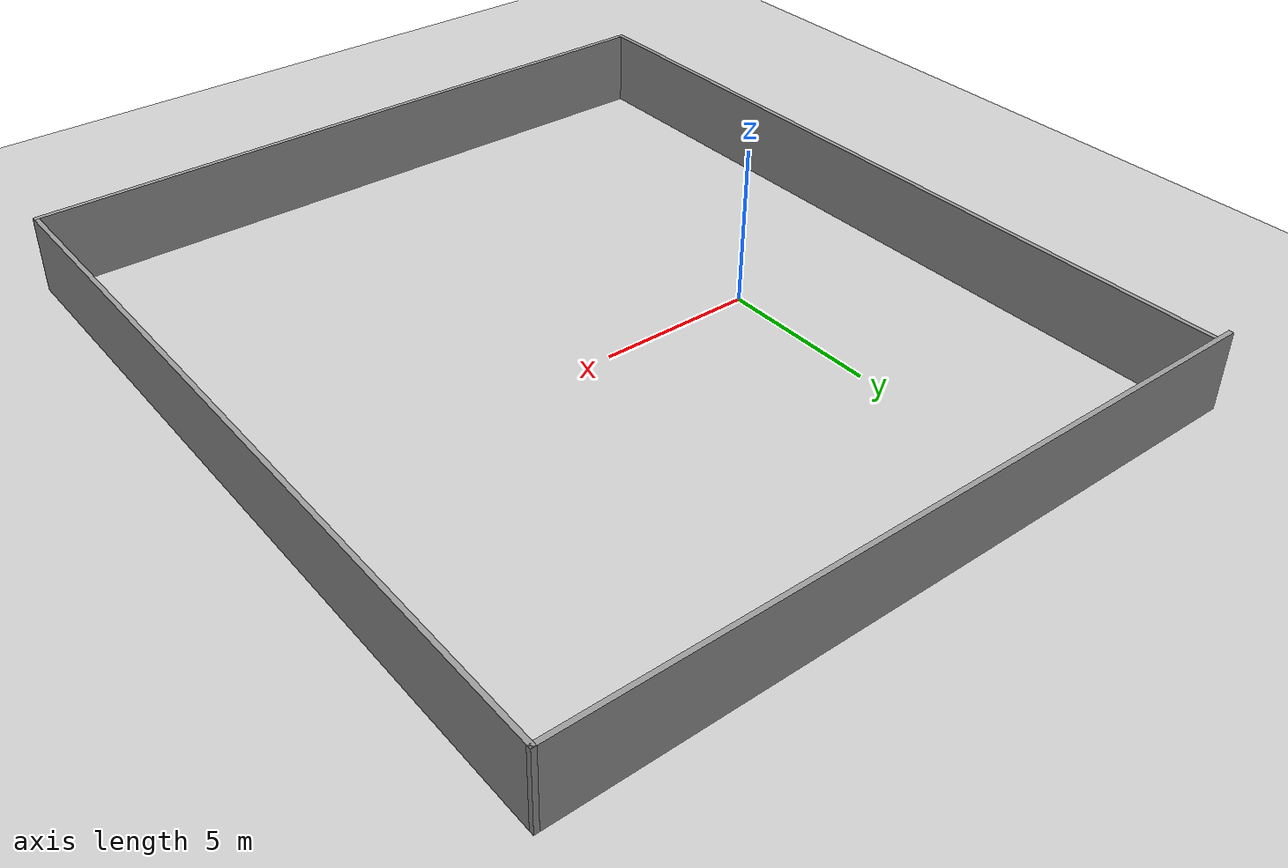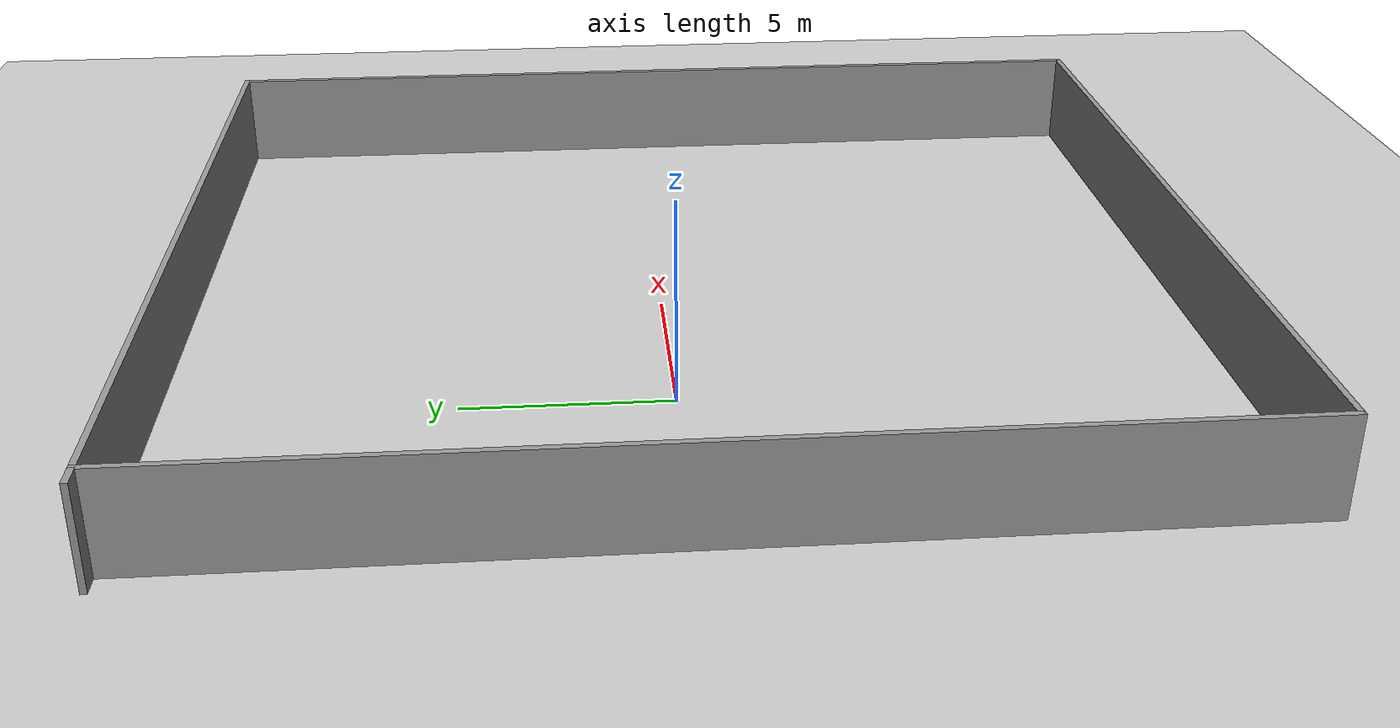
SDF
<sdf version="1.7">
 <world name="default">
  <light name="sun" type="directional">
   <pose>0 0 10 0 -0 0</pose>
   <diffuse>0.8 0.8 0.8 1</diffuse>
   <specular>0.2 0.2 0.2 1</specular>
   <attenuation>
    <range>1000</range>
    <constant>0.9</constant>
    <linear>0.01</linear>
    <quadratic>0.001</quadratic>
   </attenuation>
   <direction>-0.5 0.1 -0.9</direction>
   <spot><inner_angle>0</inner_angle><outer_angle>0</outer_angle><falloff>0</falloff></spot>
  </light>
  <model name="ground_plane">
   <static>1</static>
   <link name="link">
    <collision name="collision">
     <geometry><plane><normal>0 0 1</normal><size>100 100</size></plane></geometry>
     <surface>
      <contact><collide_bitmask>65535</collide_bitmask></contact>
      <friction><ode><mu>100</mu><mu2>50</mu2></ode></friction>
     </surface>
    </collision>
    <visual name="visual">
     <cast_shadows>0</cast_shadows>
     <geometry><plane><normal>0 0 1</normal><size>100 100</size></plane></geometry>
     <material>
      <script><uri>file://media/materials/scripts/gazebo.material</uri><name>Gazebo/Grey</name></script>
     </material>
    </visual>
   </link>
  </model>
  <gravity>0 0 -9.8</gravity>
  <magnetic_field>6e-06 2.3e-05 -4.2e-05</magnetic_field>
  <atmosphere type="adiabatic"/>
  <physics type="ode">
   <max_step_size>0.001</max_step_size>
   <real_time_factor>1</real_time_factor>
   <real_time_update_rate>1000</real_time_update_rate>
  </physics>
  <scene><ambient>0.4 0.4 0.4 1</ambient><background>0.7 0.7 0.7 1</background><shadows>1</shadows></scene>
  <spherical_coordinates>
   <surface_model>EARTH_WGS84</surface_model>
   <latitude_deg>0</latitude_deg>
   <longitude_deg>0</longitude_deg>
   <elevation>0</elevation>
   <heading_deg>0</heading_deg>
  </spherical_coordinates>
  <model name="room_square">
   <pose>4.87636 -0.685266 0 0 -0 0</pose>
   <link name="Wall_22">
    <collision name="Wall_22_Collision">
     <geometry><box><size>25.25 0.15 2.5</size></box></geometry>
     <pose>0 0 1.25 0 -0 0</pose>
    </collision>
    <visual name="Wall_22_Visual">
     <pose>0 0 1.25 0 -0 0</pose>
     <geometry><box><size>25.25 0.15 2.5</size></box></geometry>
     <material>
      <script><uri>file://media/materials/scripts/gazebo.material</uri><name>Gazebo/Grey</name></script>
      <ambient>1 1 1 1</ambient>
     </material>
     <meta><layer>0</layer></meta>
    </visual>
    <pose>-10.8 0 0 0 -0 -1.5708</pose>
   </link>
   <link name="Wall_23">
    <collision name="Wall_23_Collision">
     <geometry><box><size>22.25 0.15 2.5</size></box></geometry>
     <pose>0 0 1.25 0 -0 0</pose>
    </collision>
    <visual name="Wall_23_Visual">
     <pose>0 0 1.25 0 -0 0</pose>
     <geometry><box><size>22.25 0.15 2.5</size></box></geometry>
     <material>
      <script><uri>file://media/materials/scripts/gazebo.material</uri><name>Gazebo/Grey</name></script>
      <ambient>1 1 1 1</ambient>
     </material>
     <meta><layer>0</layer></meta>
    </visual>
    <pose>0.249999 -12.55 0 0 -0 0</pose>
   </link>
   <link name="Wall_24">
    <collision name="Wall_24_Collision">
     <geometry><box><size>25.25 0.15 2.5</size></box></geometry>
     <pose>0 0 1.25 0 -0 0</pose>
    </collision>
    <visual name="Wall_24_Visual">
     <pose>0 0 1.25 0 -0 0</pose>
     <geometry><box><size>25.25 0.15 2.5</size></box></geometry>
     <material>
      <script><uri>file://media/materials/scripts/gazebo.material</uri><name>Gazebo/Grey</name></script>
      <ambient>1 1 1 1</ambient>
     </material>
     <meta><layer>0</layer></meta>
    </visual>
    <pose>11.3 0 0 0 -0 1.5708</pose>
   </link>
   <link name="Wall_25">
    <collision name="Wall_25_Collision">
     <geometry><box><size>22.75 0.15 2.5</size></box></geometry>
     <pose>0 0 1.25 0 -0 0</pose>
    </collision>
    <visual name="Wall_25_Visual">
     <pose>0 0 1.25 0 -0 0</pose>
     <geometry><box><size>22.75 0.15 2.5</size></box></geometry>
     <material>
      <script><uri>file://media/materials/scripts/gazebo.material</uri><name>Gazebo/Grey</name></script>
      <ambient>1 1 1 1</ambient>
     </material>
     <meta><layer>0</layer></meta>
    </visual>
    <pose>-1e-06 12.55 0 0 -0 3.14159</pose>
   </link>
   <static>1</static>
  </model>
 </world>
</sdf>
